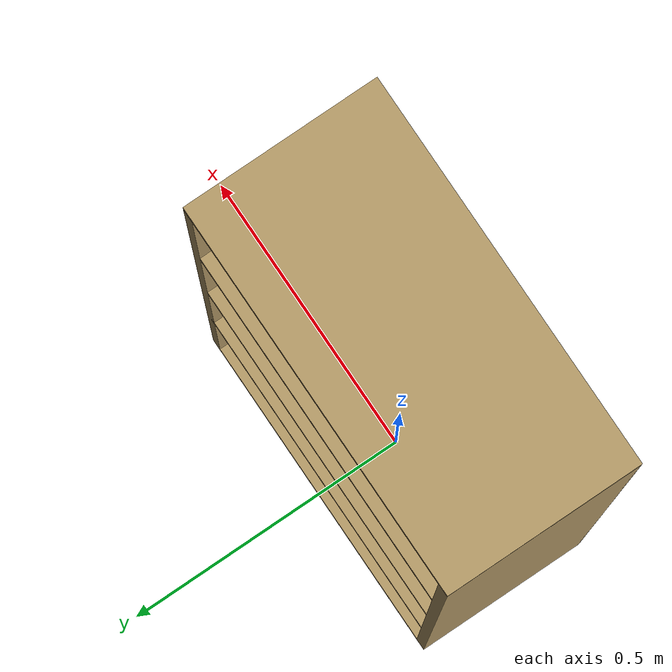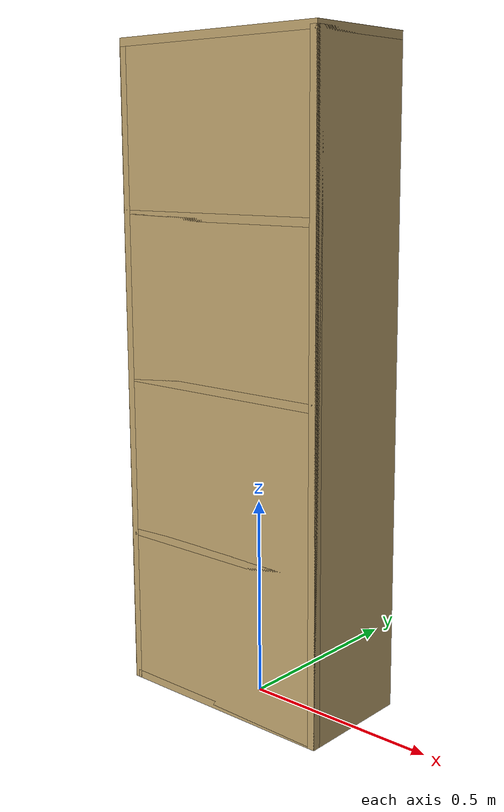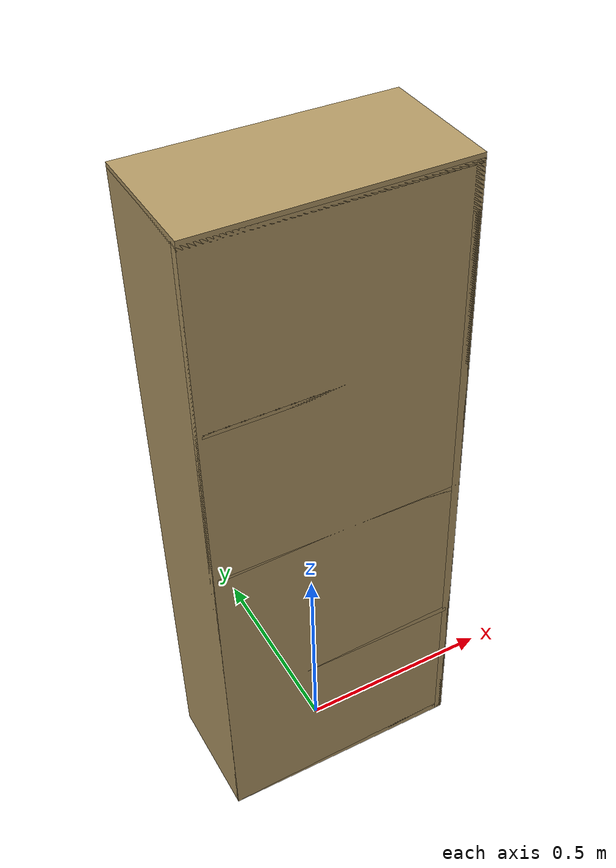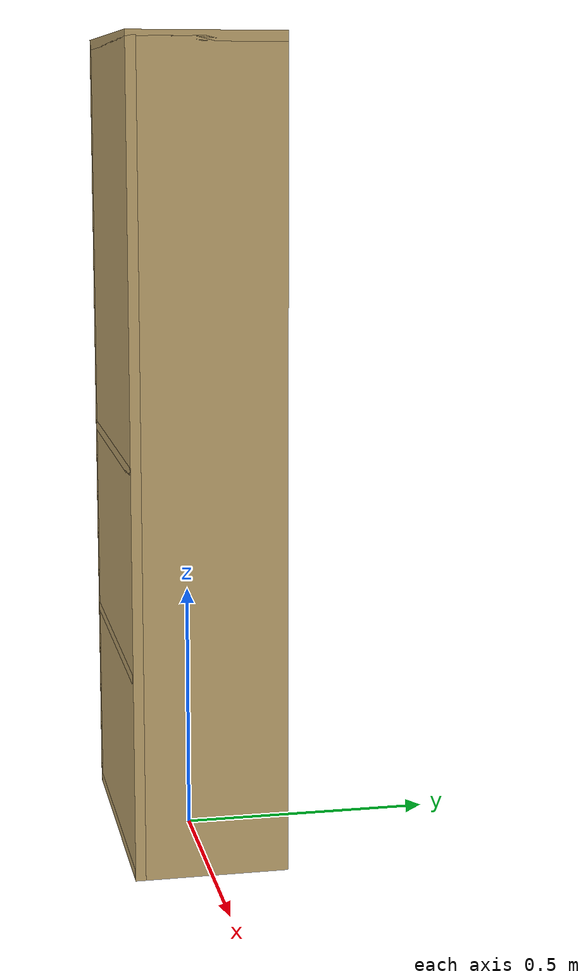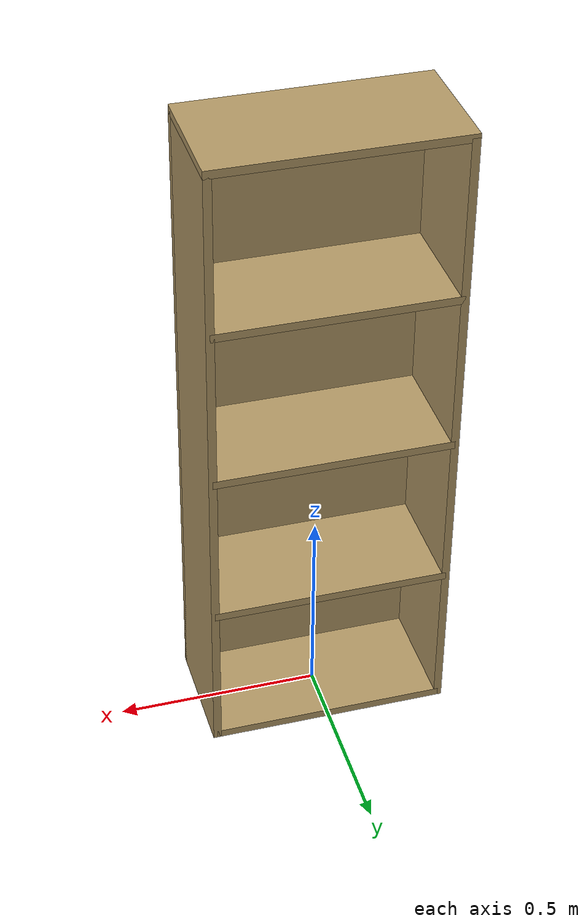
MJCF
<mujoco>
  <worldbody>
    <body name="bookcase">
      <geom name="bc_back" type="box" size="0.3 0.01 0.8" pos="0 -0.14 0.8" rgba="0.7 0.6 0.4 1" contype="8" conaffinity="15"/>
      <geom name="bc_left" type="box" size="0.01 0.15 0.8" pos="-0.29 0 0.8" rgba="0.7 0.6 0.4 1" contype="8" conaffinity="15"/>
      <geom name="bc_right" type="box" size="0.01 0.15 0.8" pos="0.29 0 0.8" rgba="0.7 0.6 0.4 1" contype="8" conaffinity="15"/>
      <geom name="bc_bottom" type="box" size="0.29 0.15 0.01" pos="0 0 0.01" rgba="0.7 0.6 0.4 1" contype="8" conaffinity="15"/>
      <geom name="bc_shelf_0" type="box" size="0.29 0.15 0.01" pos="0 0 0.4" rgba="0.7 0.6 0.4 1" contype="8" conaffinity="15"/>
      <geom name="bc_shelf_1" type="box" size="0.29 0.15 0.01" pos="0 0 0.8" rgba="0.7 0.6 0.4 1" contype="8" conaffinity="15"/>
      <geom name="bc_shelf_2" type="box" size="0.29 0.15 0.01" pos="0 0 1.2" rgba="0.7 0.6 0.4 1" contype="8" conaffinity="15"/>
      <geom name="bc_top" type="box" size="0.3 0.15 0.01" pos="0 0 1.6" rgba="0.7 0.6 0.4 1" contype="8" conaffinity="15"/>
    </body>
  </worldbody>
</mujoco>
